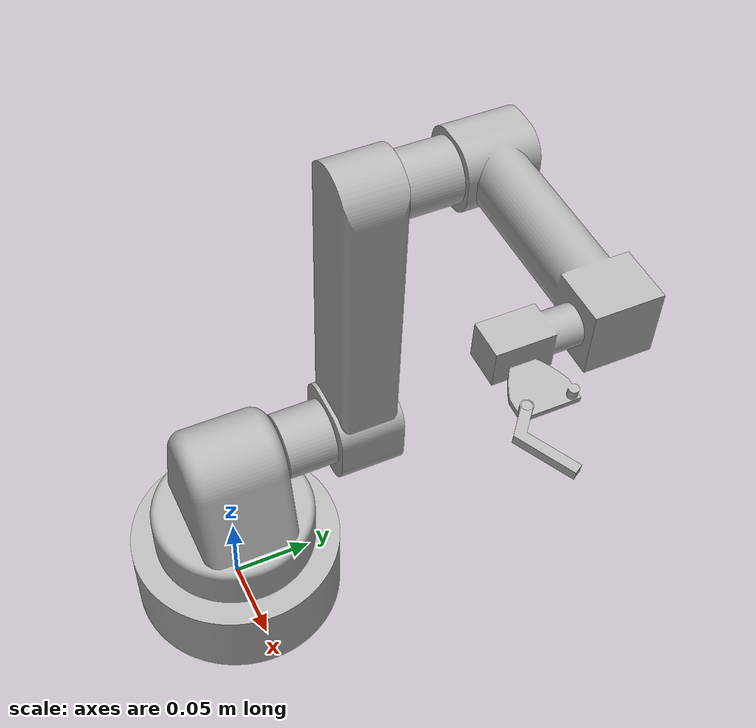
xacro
<?xml version="1.0" ?>
<robot name="ece_project" xmlns:xacro="http://www.ros.org/wiki/xacro">

<xacro:arg name="controller_config_path" default=""/>

<material name="silver">
  <color rgba="0.700 0.700 0.700 1.000"/>
</material>

<xacro:property name="body_color" value="Gazebo/Silver" />

<gazebo reference="base_link">
  <material>${body_color}</material>
  <mu1>0.2</mu1>
  <mu2>0.2</mu2>
  <self_collide>true</self_collide>
  <gravity>true</gravity>
</gazebo>

<gazebo reference="part1_1">
  <material>${body_color}</material>
  <mu1>0.2</mu1>
  <mu2>0.2</mu2>
  <self_collide>true</self_collide>
</gazebo>

<gazebo reference="part2_1">
  <material>${body_color}</material>
  <mu1>0.2</mu1>
  <mu2>0.2</mu2>
  <self_collide>true</self_collide>
</gazebo>

<gazebo reference="part3_1">
  <material>${body_color}</material>
  <mu1>0.2</mu1>
  <mu2>0.2</mu2>
  <self_collide>true</self_collide>
</gazebo>

<gazebo reference="Component7_1">
  <material>${body_color}</material>
  <mu1>0.2</mu1>
  <mu2>0.2</mu2>
  <self_collide>true</self_collide>
</gazebo>

<gazebo reference="arm1_1">
  <material>${body_color}</material>
  <mu1>0.2</mu1>
  <mu2>0.2</mu2>
  <self_collide>true</self_collide>
</gazebo>

<gazebo>
    <plugin name="gz_ros2_control::GazeboSimROS2ControlPlugin"
            filename="libgz_ros2_control-system.so">
        <parameters>$(arg controller_config_path)</parameters>
    </plugin>
</gazebo>

<ros2_control name="gz_ros2_control" type="system">

    <hardware>
        <plugin>gz_ros2_control/GazeboSimSystem</plugin>
    </hardware>

    <!-- Define each controllable joint -->
    <joint name="base_link_part1_joint">
        <command_interface name="position">
            <param name="min">-3.14</param>
            <param name="max">3.14</param>
        </command_interface>
        <state_interface name="position"/>
        <state_interface name="velocity"/>
    </joint>

    <joint name="part1_part2_joint">
        <command_interface name="position">
            <param name="min">-3.14</param>
            <param name="max">3.14</param>
        </command_interface>
        <state_interface name="position"/>
        <state_interface name="velocity"/>
    </joint>

    <joint name="part2_part3_joint">
        <command_interface name="position">
            <param name="min">-3.14</param>
            <param name="max">3.14</param>
        </command_interface>
        <state_interface name="position"/>
        <state_interface name="velocity"/>
    </joint>

    <joint name="part3_component_joint">
        <command_interface name="position">
            <param name="min">-3.14</param>
            <param name="max">3.14</param>
        </command_interface>
        <state_interface name="position"/>
        <state_interface name="velocity"/>
    </joint>

    <joint name="component_arm_joint">
        <command_interface name="position">
            <param name="min">-3.14</param>
            <param name="max">3.14</param>
        </command_interface>
        <state_interface name="position"/>
        <state_interface name="velocity"/>
    </joint>

</ros2_control>

<link name="world" />

<joint name="world_to_base_link" type="fixed">
  <parent link="world"/>
  <child link="base_link"/>
  <origin xyz="0 0 0" rpy="0 0 0"/>
</joint>

<link name="base_link">
  <inertial>
    <origin xyz="0.004357787137382906 0.0 0.024809734904587342" rpy="0 0 0"/>
    <mass value="5.209742367356124"/>
    <inertia ixx="0.006588" iyy="0.006588" izz="0.011006" ixy="0.0" iyz="0.0" ixz="-0.0"/>
  </inertial>
  <visual>
    <origin xyz="0 0 0" rpy="0 0 0"/>
    <geometry>
      <mesh filename="file://$(find ece_project_description)/meshes/base_link.stl" scale="0.001 0.001 0.001"/>
    </geometry>
    <material name="silver"/>
  </visual>
  <collision>
    <origin xyz="0 0 0" rpy="0 0 0"/>
    <geometry>
       <mesh filename="file://$(find ece_project_description)/meshes/base_link.stl" scale="0.001 0.001 0.001"/>
    </geometry>
  </collision>
</link>

<link name="part1_1">
  <inertial>
    <origin xyz="-1.9845675052875683e-07 1.2737500378211816e-06 0.037266056560422" rpy="0 0 0"/>
    <mass value="3.6976708577920414"/>
    <inertia ixx="0.004276" iyy="0.004363" izz="0.003432" ixy="0.0" iyz="-0.0" ixz="0.0"/>
  </inertial>
  <visual>
    <origin xyz="-0.004358 -0.0 -0.04981" rpy="0 0 0"/>
    <geometry>
      <mesh filename="file://$(find ece_project_description)/meshes/part1_1.stl" scale="0.001 0.001 0.001"/>
    </geometry>
    <material name="silver"/>
  </visual>
  <collision>
    <origin xyz="-0.004358 -0.0 -0.04981" rpy="0 0 0"/>
    <geometry>
       <mesh filename="file://$(find ece_project_description)/meshes/part1_1.stl" scale="0.001 0.001 0.001"/>
    </geometry>
  </collision>
</link>

<link name="part2_1">
  <inertial>
    <origin xyz="-1.6488189339119302e-07 0.046637799610768624 0.07252992652361669" rpy="0 0 0"/>
    <mass value="3.0798451493370087"/>
    <inertia ixx="0.013764" iyy="0.013609" izz="0.00115" ixy="-0.0" iyz="-0.000752" ixz="0.0"/>
  </inertial>
  <visual>
    <origin xyz="-0.004358 -0.031 -0.120856" rpy="0 0 0"/>
    <geometry>
      <mesh filename="file://$(find ece_project_description)/meshes/part2_1.stl" scale="0.001 0.001 0.001"/>
    </geometry>
    <material name="silver"/>
  </visual>
  <collision>
    <origin xyz="-0.004358 -0.031 -0.120856" rpy="0 0 0"/>
    <geometry>
       <mesh filename="file://$(find ece_project_description)/meshes/part2_1.stl" scale="0.001 0.001 0.001"/>
    </geometry>
  </collision>
</link>

<link name="part3_1">
  <inertial>
    <origin xyz="0.04369632900488334 0.044718146037920486 -4.12461192422775e-07" rpy="0 0 0"/>
    <mass value="1.5014073264668482"/>
    <inertia ixx="0.000513" iyy="0.003407" izz="0.00364" ixy="-0.000347" iyz="-0.0" ixz="0.0"/>
  </inertial>
  <visual>
    <origin xyz="-0.004358 -0.0995 -0.295856" rpy="0 0 0"/>
    <geometry>
      <mesh filename="file://$(find ece_project_description)/meshes/part3_1.stl" scale="0.001 0.001 0.001"/>
    </geometry>
    <material name="silver"/>
  </visual>
  <collision>
    <origin xyz="-0.004358 -0.0995 -0.295856" rpy="0 0 0"/>
    <geometry>
      <mesh filename="file://$(find ece_project_description)/meshes/part3_1.stl" scale="0.001 0.001 0.001"/>
    </geometry>
  </collision>
</link>

<link name="Component7_1">
  <inertial>
    <origin xyz="0.0027893911320693854 -0.02442326417952198 -0.0005100217651111127" rpy="0 0 0"/>
    <mass value="0.1478012924361456"/>
    <inertia ixx="2.7e-05" iyy="1.8e-05" izz="3.7e-05" ixy="2e-06" iyz="-0.0" ixz="2e-06"/>
  </inertial>
  <visual>
    <origin xyz="-0.119358 -0.131985 -0.295856" rpy="0 0 0"/>
    <geometry>
      <mesh filename="file://$(find ece_project_description)/meshes/Component7_1.stl" scale="0.001 0.001 0.001"/>
    </geometry>
    <material name="silver"/>
  </visual>
  <collision>
    <origin xyz="-0.119358 -0.131985 -0.295856" rpy="0 0 0"/>
     <geometry>
      <mesh filename="file://$(find ece_project_description)/meshes/Component7_1.stl" scale="0.001 0.001 0.001"/>
    </geometry>
  </collision>
</link>

<link name="arm1_1">
  <inertial>
    <origin xyz="0.017680872153771843 -0.003393088338515482 -0.0040560330959668045" rpy="0 0 0"/>
    <mass value="0.008353437860327684"/>
    <inertia ixx="1e-6" iyy="1e-6" izz="1e-6" ixy="-0.0" iyz="0.0" ixz="0.0"/>
  </inertial>
  <visual>
    <origin xyz="-0.152624 -0.09 -0.296733" rpy="0 0 0"/>
    <geometry>
      <mesh filename="file://$(find ece_project_description)/meshes/arm1_1.stl" scale="0.001 0.001 0.001"/>
    </geometry>
    <material name="silver"/>
  </visual>
  <collision>
    <origin xyz="-0.152624 -0.09 -0.296733" rpy="0 0 0"/>
     <geometry>
      <mesh filename="file://$(find ece_project_description)/meshes/arm1_1.stl" scale="0.001 0.001 0.001"/>
    </geometry>
  </collision>
</link>

<joint name="base_link_part1_joint" type="continuous">
  <origin xyz="0.004358 0.0 0.04981" rpy="0 0 0"/>
  <parent link="base_link"/>
  <child link="part1_1"/>
  <axis xyz="0.0 0.0 1.0"/>
</joint>

<joint name="part1_part2_joint" type="continuous">
  <origin xyz="0.0 0.031 0.071046" rpy="0 0 0"/>
  <parent link="part1_1"/>
  <child link="part2_1"/>
  <axis xyz="0.0 -1.0 0.0"/>
</joint>

<joint name="part2_part3_joint" type="continuous">
  <origin xyz="0.0 0.0685 0.175" rpy="0 0 0"/>
  <parent link="part2_1"/>
  <child link="part3_1"/>
  <axis xyz="0.0 -1.0 0.0"/>
</joint>

<joint name="part3_component_joint" type="continuous">
  <origin xyz="0.115 0.032485 0.0" rpy="0 0 0"/>
  <parent link="part3_1"/>
  <child link="Component7_1"/>
  <axis xyz="0.0 -1.0 0.0"/>
</joint>

<joint name="component_arm_joint" type="continuous">
  <origin xyz="0.033266 -0.041985 0.000877" rpy="0 0 0"/>
  <parent link="Component7_1"/>
  <child link="arm1_1"/>
  <axis xyz="0.087156 0.0 0.996195"/>
</joint>

</robot>
